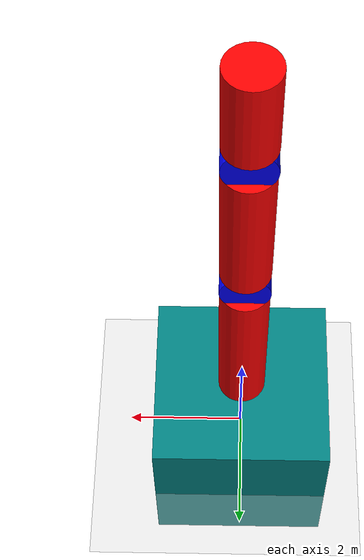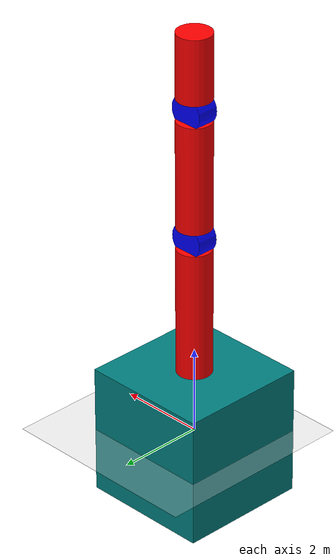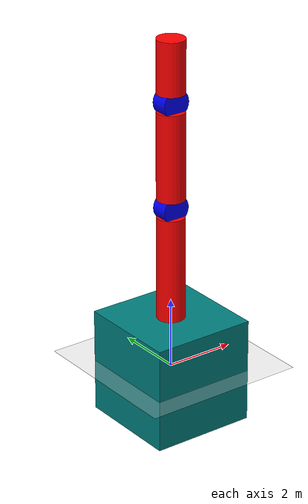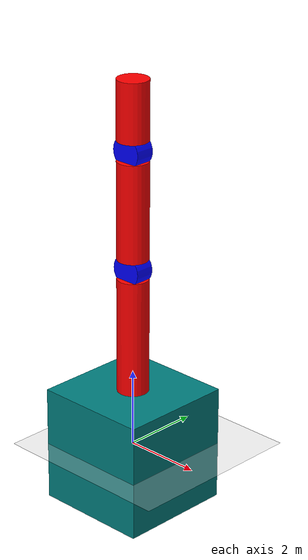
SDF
<?xml version="1.0" ?>
<sdf version="1.8">
    <world name="world_plain">
        <physics name="1ms" type="ignored">
            <max_step_size>0.001</max_step_size>
            <real_time_factor>1.0</real_time_factor>
        </physics>

        <!-- world dynamics-->
        <plugin
            filename="gz-sim-physics-system"
            name="gz::sim::systems::Physics">
        </plugin>
        <!-- creating, moving, and deleting models-->
        <plugin
            filename="gz-sim-user-commands-system"
            name="gz::sim::systems::UserCommands">
        </plugin>
        <!-- display world scene-->
        <plugin
            filename="gz-sim-scene-broadcaster-system"
            name="gz::sim::systems::SceneBroadcaster">
        </plugin>

        <model name="ground_plane">
            <static>true</static>
            <link name="link">
                <collision name="collision">
                <geometry>
                    <plane>
                    <normal>0 0 1</normal>
                    </plane>
                </geometry>
                </collision>
                <visual name="visual">
                <geometry>
                    <plane>
                    <normal>0 0 1</normal>
                    <size>100 100</size>
                    </plane>
                </geometry>
                <material>
                    <ambient>0.8 0.8 0.8 1</ambient>
                    <diffuse>0.8 0.8 0.8 1</diffuse>
                    <specular>0.8 0.8 0.8 1</specular>
                </material>
                </visual>
            </link>
        </model>

        <include>
            <name>finger</name>
            <pose relative_to='world'>
                0 0 0 0 0 0
            </pose>
            <uri>
            model://finger
            </uri>
        </include>
    </world>
</sdf>

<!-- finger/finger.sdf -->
<!-- Inspired by Gazebo tutorial https://gazebosim.org/docs/harmonic/tutorials/-->
<sdf version="1.8">
    <model name="finger" canonical_link='platform'>
        <pose>
            0 0 0 0 0 0
        </pose>
        <link name='platform'>
            <inertial> <!--inertial properties of the link mass, inertia matix, can be calculated with https://amesweb.info/inertia/mass-moment-of-inertia-calculator.aspx-->
                <mass>10</mass>
                <inertia>
                    <ixx>0.095329</ixx>
                    <ixy>0</ixy>
                    <ixz>0</ixz>
                    <iyy>0.381317</iyy>
                    <iyz>0</iyz>
                    <izz>0.476646</izz>
                </inertia>
            </inertial>
            <visual name='visual'>
                <geometry>
                    <box>
                        <size>3.0 3.0 3.0</size>
                    </box>
                </geometry>
                <!--let's add color to our link
                    red/gree/blue/alpha-->
                <material>
                    <ambient>0.0 0.5 0.5 1</ambient>
                    <diffuse>0.0 0.5 0.5 1</diffuse>
                    <specular>0.0 0.5 0.5 1</specular>
                </material>
            </visual>
            <collision name='collision'>
                <geometry>
                    <box>
                        <size>3.0 3.0 3.0</size>
                    </box>
                </geometry>
            </collision>
        </link>
        <!-- base_segment-->
        <link name='base_segment'>
            <pose relative_to="platform">0 0 3 0 0 0</pose>
            <inertial>
                <mass>1</mass>
                <inertia>
                    <ixx>0.043333</ixx>
                    <ixy>0</ixy>
                    <ixz>0</ixz>
                    <iyy>0.043333</iyy>
                    <iyz>0</iyz>
                    <izz>0.08</izz>
                </inertia>
            </inertial>
            <visual name='visual'>
                <geometry>
                    <cylinder>
                        <radius>0.4</radius>
                        <length>3</length>
                    </cylinder>
                </geometry>
                <material>
                    <ambient>1.0 0.0 0.0 1</ambient>
                    <diffuse>1.0 0.0 0.0 1</diffuse>
                    <specular>1.0 0.0 0.0 1</specular>
                </material>
            </visual>
            <collision name='collision'>
                <geometry>
                    <cylinder>
                        <radius>0.4</radius>
                        <length>3</length>
                    </cylinder>
                </geometry>
            </collision>
        </link>
        <!-- mid_segment-->
        <link name='lower_joint'>
            <pose relative_to="base_segment">0 0 1.75 -1.5707 0 0</pose><!-- z=len(base_segment)/2+len(lower_joint)/2-->
            <inertial>
                <mass>1</mass>
                <inertia>
                    <ixx>0.043333</ixx>
                    <ixy>0</ixy>
                    <ixz>0</ixz>
                    <iyy>0.043333</iyy>
                    <iyz>0</iyz>
                    <izz>0.08</izz>
                </inertia>
            </inertial>
            <visual name='visual'>
                <geometry>
                    <cylinder>
                        <radius>0.4</radius>
                        <length>0.5</length>
                    </cylinder>
                </geometry>
                <material>
                    <ambient>0.0 0.0 1.0 1</ambient>
                    <diffuse>0.0 0.0 1.0 1</diffuse>
                    <specular>0.0 0.0 1.0 1</specular>
                </material>
            </visual>
            <collision name='collision'>
                <geometry>
                    <cylinder>
                        <radius>0.4</radius>
                        <length>0.5</length>
                    </cylinder>
                </geometry>
            </collision>
        </link>
        <link name='mid_segment'>
            <pose relative_to="base_segment">0 0 3.25 0 0 0</pose>
            <inertial>
                <mass>1</mass>
                <inertia>
                    <ixx>0.043333</ixx>
                    <ixy>0</ixy>
                    <ixz>0</ixz>
                    <iyy>0.043333</iyy>
                    <iyz>0</iyz>
                    <izz>0.08</izz>
                </inertia>
            </inertial>
            <visual name='visual'>
                <geometry>
                    <cylinder>
                        <radius>0.4</radius>
                        <length>2.5</length>
                    </cylinder>
                </geometry>
                <material>
                    <ambient>1.0 0.0 0.0 1</ambient>
                    <diffuse>1.0 0.0 0.0 1</diffuse>
                    <specular>1.0 0.0 0.0 1</specular>
                </material>
            </visual>
            <collision name='collision'>
                <geometry>
                    <cylinder>
                        <radius>0.4</radius>
                        <length>2.5</length>
                    </cylinder>
                </geometry>
            </collision>
        </link>
        <!-- upper_segment-->
        <link name='upper_joint'>
            <pose relative_to="mid_segment">0 0 1.5 -1.5707 0 0</pose><!-- z=len(mid_segment)/2+len(upper_joint)/2-->
            <inertial>
                <mass>1</mass>
                <inertia>
                    <ixx>0.043333</ixx>
                    <ixy>0</ixy>
                    <ixz>0</ixz>
                    <iyy>0.043333</iyy>
                    <iyz>0</iyz>
                    <izz>0.08</izz>
                </inertia>
            </inertial>
            <visual name='visual'>
                <geometry>
                    <cylinder>
                        <radius>0.4</radius>
                        <length>0.5</length>
                    </cylinder>
                </geometry>
                <material>
                    <ambient>0.0 0.0 1.0 1</ambient>
                    <diffuse>0.0 0.0 1.0 1</diffuse>
                    <specular>0.0 0.0 1.0 1</specular>
                </material>
            </visual>
            <collision name='collision'>
                <geometry>
                    <cylinder>
                        <radius>0.4</radius>
                        <length>0.5</length>
                    </cylinder>
                </geometry>
            </collision>
        </link>
        <link name='upper_segment'>
            <pose relative_to="mid_segment">0 0 2.5 0 0 0</pose>
            <inertial>
                <mass>1</mass>
                <inertia>
                    <ixx>0.043333</ixx>
                    <ixy>0</ixy>
                    <ixz>0</ixz>
                    <iyy>0.043333</iyy>
                    <iyz>0</iyz>
                    <izz>0.08</izz>
                </inertia>
            </inertial>
            <visual name='visual'>
                <geometry>
                    <cylinder>
                        <radius>0.4</radius>
                        <length>1.5</length>
                    </cylinder>
                </geometry>
                <material>
                    <ambient>1.0 0.0 0.0 1</ambient>
                    <diffuse>1.0 0.0 0.0 1</diffuse>
                    <specular>1.0 0.0 0.0 1</specular>
                </material>
            </visual>
            <collision name='collision'>
                <geometry>
                    <cylinder>
                        <radius>0.4</radius>
                        <length>1.5</length>
                    </cylinder>
                </geometry>
            </collision>
        </link>

        <!-- joints-->
        <joint name='platform_base_joint' type='revolute'>
            <pose relative_to='base_segment'/>
            <parent>platform</parent>
            <child>base_segment</child>
            <axis>
                <xyz expressed_in='__model__'>0 1 0</xyz> <!--can be defined as any frame or even arbitrary frames-->
                <limit> <!--angle limits in radians-->
                    <lower>0</lower>    <!--negative infinity-->
                    <upper>0</upper>     <!--positive infinity-->
                </limit>
            </axis>
        </joint>

        <joint name='base_lower_joint' type='revolute'>
            <pose relative_to='lower_joint'/>
            <parent>base_segment</parent>
            <child>lower_joint</child>
            <axis>
                <xyz expressed_in='__model__'>0 1 0</xyz> <!--can be defined as any frame or even arbitrary frames-->
                <limit> <!--angle limits in radians-->
                    <lower>0</lower>    <!--negative infinity-->
                    <upper>1.91986</upper>     <!--positive infinity-->
                </limit>
            </axis>
        </joint>

        <joint name='lower_mid_joint' type='revolute'>
            <pose relative_to='mid_segment'/>
            <parent>lower_joint</parent>
            <child>mid_segment</child>
            <axis>
                <xyz expressed_in='__model__'>0 1 0</xyz> <!--can be defined as any frame or even arbitrary frames-->
                <limit> <!--angle limits in radians-->
                    <lower>0</lower>    <!--negative infinity-->
                    <upper>0</upper>     <!--positive infinity-->
                </limit>
            </axis>
        </joint>

        <joint name='mid_upper_joint' type='revolute'>
            <pose relative_to='upper_joint'/>
            <parent>mid_segment</parent>
            <child>upper_joint</child>
            <axis>
                <xyz expressed_in='__model__'>0 1 0</xyz> <!--can be defined as any frame or even arbitrary frames-->
                <limit> <!--angle limits in radians-->
                    <lower>0</lower>    <!--negative infinity-->
                    <upper>1.91986</upper>     <!--positive infinity-->
                </limit>
            </axis>
        </joint>

        <joint name='upper_upper_joint' type='revolute'>
            <pose relative_to='mid_segment'/>
            <parent>upper_joint</parent>
            <child>upper_segment</child>
            <axis>
                <xyz expressed_in='__model__'>0 1 0</xyz> <!--can be defined as any frame or even arbitrary frames-->
                <limit> <!--angle limits in radians-->
                    <lower>0</lower>    <!--negative infinity-->
                    <upper>0</upper>     <!--positive infinity-->
                </limit>
            </axis>
        </joint>

        <!-- plugin should be attached to a model-->
        <plugin
            filename="gz-sim-joint-controller-system"
            name="gz::sim::systems::JointController">
            <joint_name>lower_revolute_joint</joint_name>
            <initial_velocity>1.0</initial_velocity>
        </plugin>
    </model>

</sdf>
